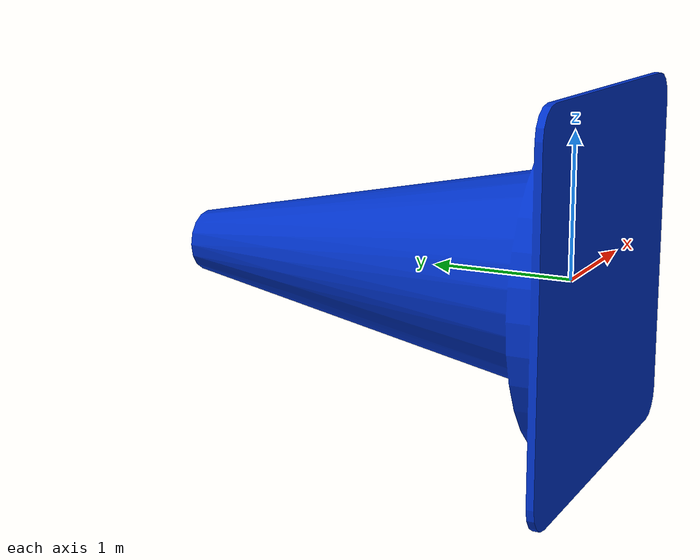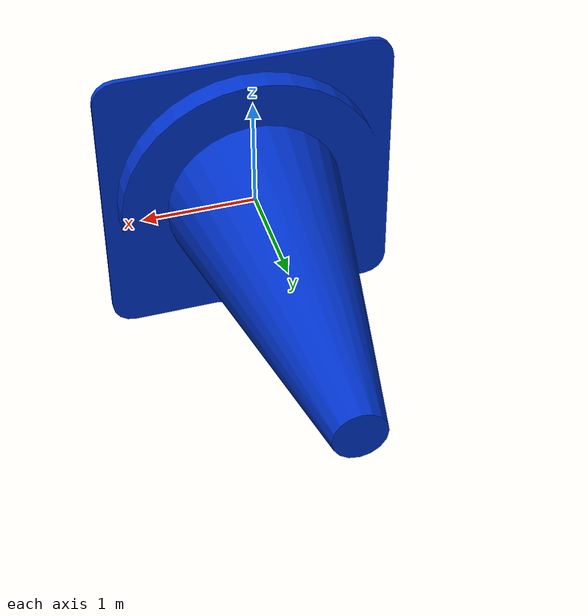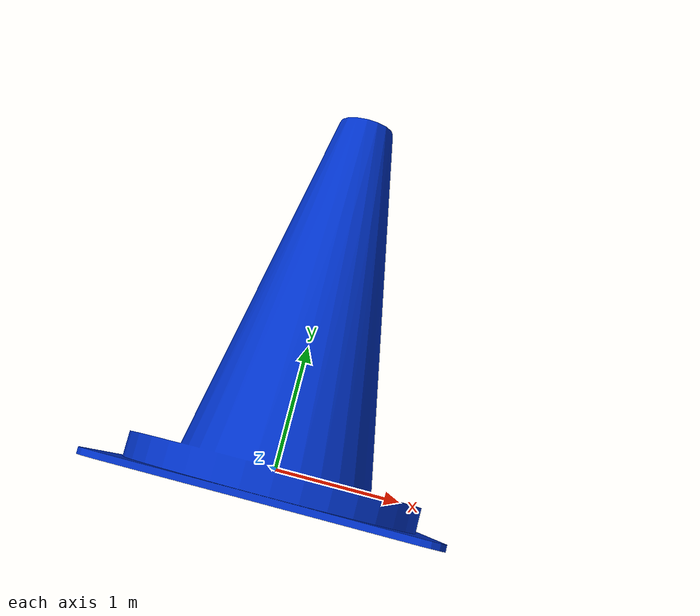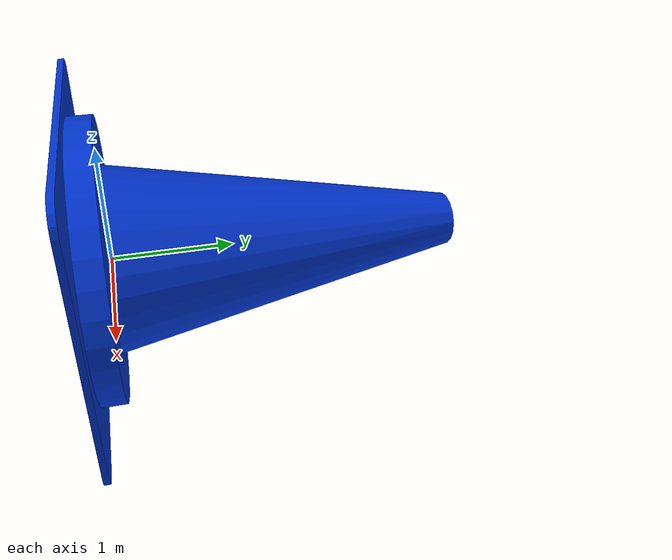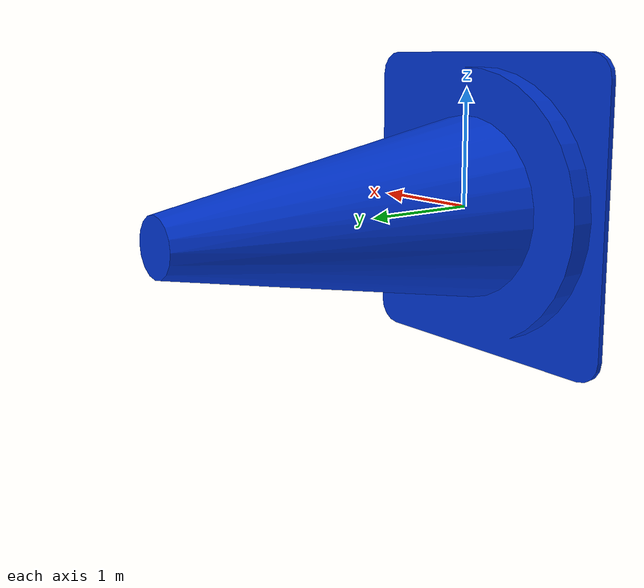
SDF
<?xml version="1.0" ?>
<sdf version="1.6">
    <model name="cone_blue">
        <static>true</static>
        <link name="link">
            <visual name="visual">
                <geometry>
                    <mesh>
                        <uri>meshes/cone.stl</uri>
                        <scale>0.01 0.01 0.01</scale>
                    </mesh>
                </geometry>
                <material>
                    <ambient>0.0 0.2 0.8 1</ambient>
                    <diffuse>0.0 0.2 0.8 1</diffuse>
                </material>
            </visual>
            <collision name="collision">
                <geometry>
                    <mesh>
                        <uri>meshes/cone.stl</uri>
                        <scale>0.01 0.01 0.01</scale>
                    </mesh>
                </geometry>
            </collision>
            <inertial>
                <mass>0.1</mass>
                <inertia>
                    <ixx>0.0001</ixx>
                    <iyy>0.0001</iyy>
                    <izz>0.0001</izz>
                    <ixy>0.0</ixy>
                    <ixz>0.0</ixz>
                    <iyz>0.0</iyz>
                </inertia>
            </inertial>
        </link>
    </model>
</sdf>
